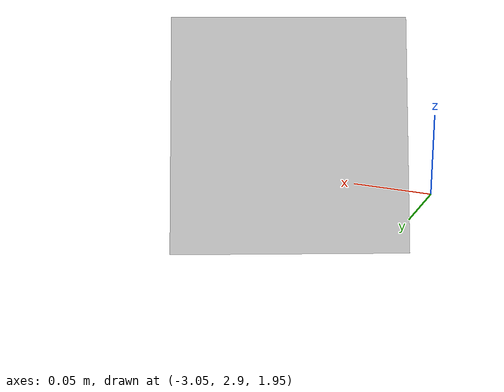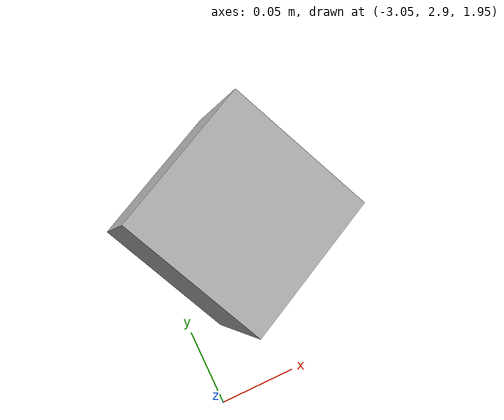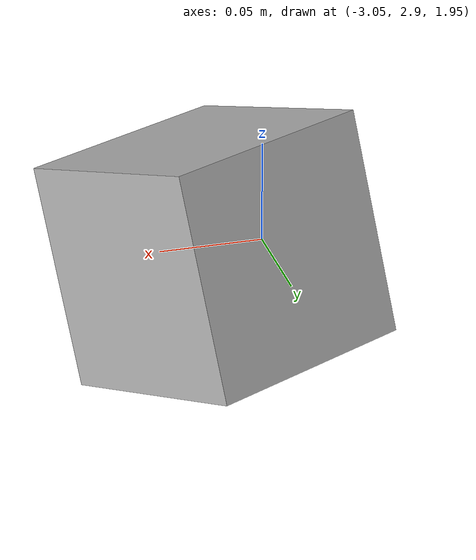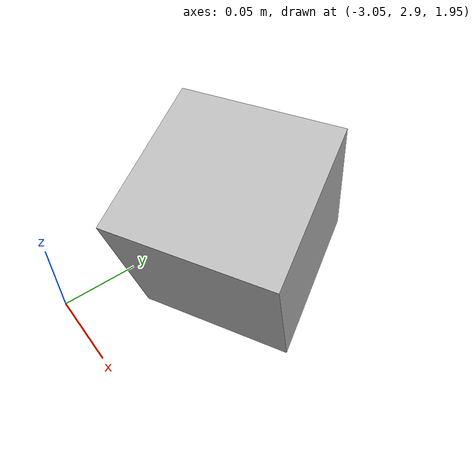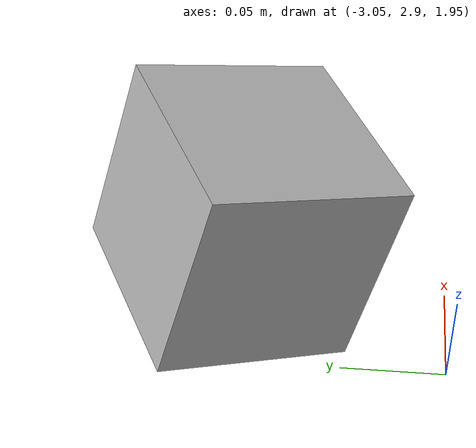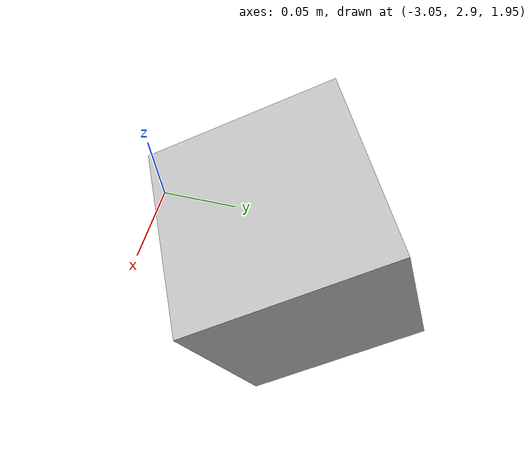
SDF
<?xml version="1.0" ?>
<sdf version="1.5">
    <world name="default">
        <scene>
            <origin_visual>0</origin_visual>
            <grid>0</grid>
        </scene>

        <physics type="ode">
            <max_step_size>0.005</max_step_size>

            <!-- Simulation == real time -->
            <real_time_update_rate>200</real_time_update_rate>

            <ode>
                <constraints>
                    <!-- Simulator.cpp -->
                    <erp>0.1</erp>
                    <cfm>10e-6</cfm>

                    <!-- Making this smaller seems to decrease rather than increase stability. -->
                    <contact_max_correcting_vel>100</contact_max_correcting_vel>
                    <contact_surface_layer>1e-8</contact_surface_layer>
                </constraints>
                <solver>
                    <type>world</type>
                </solver>
            </ode>
        </physics>

        <gui/>

        <!-- A global light source -->
        <include>
            <uri>model://sun</uri>
        </include>
        <include>
            <uri>model://tol_ground</uri>
        </include>

        <plugin name="revolve-world" filename="libWorldControlPlugin.so" />

            <model name='camera'>
              <static>true</static>
              <pose>-3 3 2 0 0.3 -1.1</pose>
              <link name='link'>
                <visual name='visual'>
                  <geometry>
                    <box>
                      <size>0.1 0.1 0.1</size>
                    </box>
                  </geometry>
                </visual>
                <sensor name='my_camera' type='camera'>
                  <camera>
                    <save enabled="true">
                      <path>/home/daanz/...</path>
                    </save>
                    <horizontal_fov>1.047</horizontal_fov>
                    <image>
                      <width>1920</width>
                      <height>1080</height>
                    </image>
                    <clip>
                      <near>0.1</near>
                      <far>100</far>
                    </clip>
                  </camera>
                  <always_on>1</always_on>
                  <update_rate>4</update_rate>
                </sensor>
              </link>
            </model>

    </world>
</sdf>

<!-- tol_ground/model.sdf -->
<sdf version="1.5">
<!-- Custom ground plane -->
  <model name="tol_ground">
    <static>true</static>
    <link name="link">
      <collision name="collision">
        <geometry>
          <plane>
            <normal>0 0 1</normal>
            <size>100 100</size>
          </plane>
        </geometry>
        <surface>
          <friction>
            <ode>
              <!-- RobogenCollision.cpp -->
              <mu>1</mu>
              <mu2>1</mu2>
              <slip1>0.01</slip1>
              <slip2>0.01</slip2>
            </ode>
          </friction>
          <contact>
            <ode>
              <kd>9.000000e+04</kd>
              <kp>2.000000e+06</kp>
            </ode>
          </contact>
        </surface>
      </collision>
      <visual name="visual">
        <cast_shadows>false</cast_shadows>
        <geometry>
          <plane>
            <normal>0 0 1</normal>
            <size>100 100</size>
          </plane>
        </geometry>
        <material>
          <script>
            <uri>model://tol_ground/materials/scripts</uri>
            <uri>model://tol_ground/materials/textures</uri>
            <name>Floor/Concrete1</name>
          </script>
        </material>
      </visual>
    </link>
  </model>
<!-- END Custom ground plane -->
</sdf>
